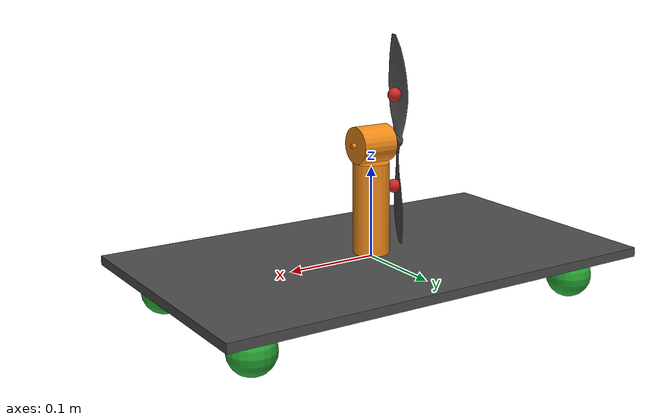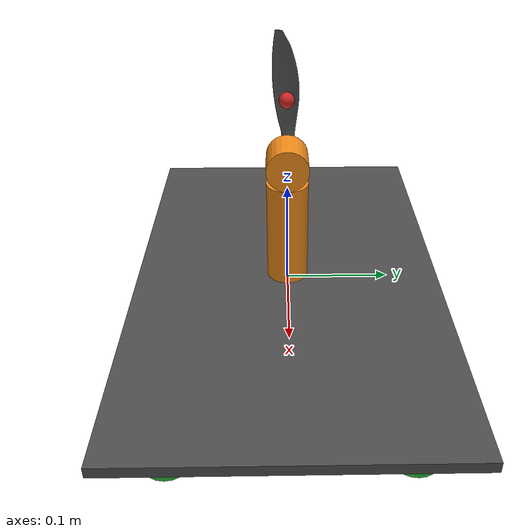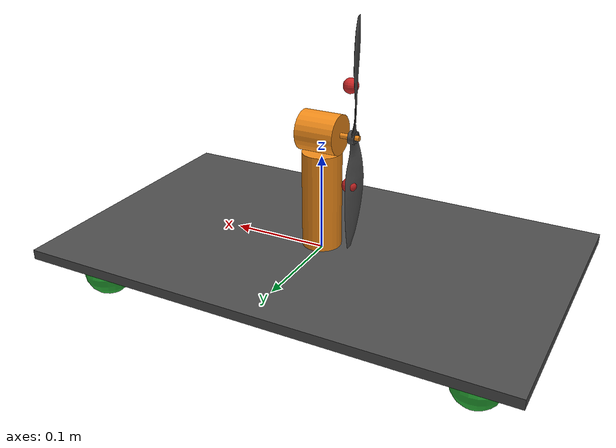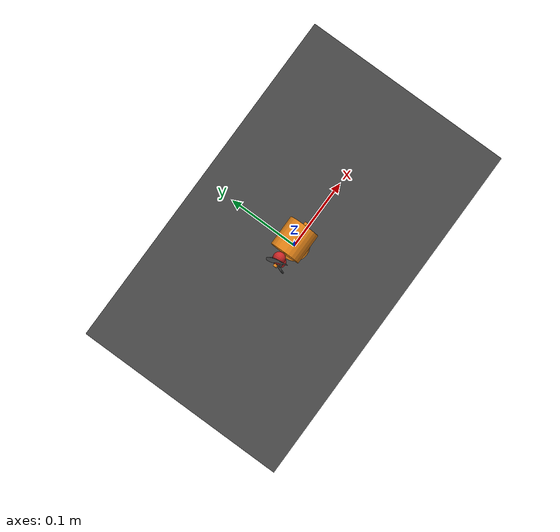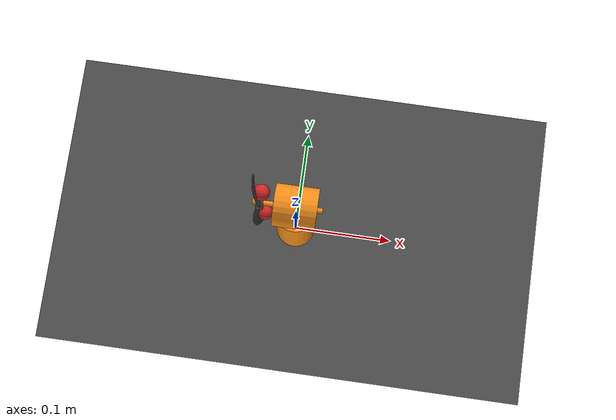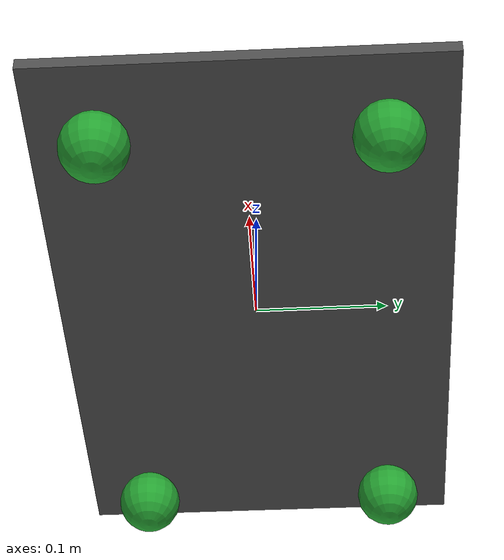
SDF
<sdf version='1.7'>
<model name='fan_car_ball_castor_ardupilot'>

    <include>
        <pose>0 0 0 0 0 0</pose>
        <uri>model://fan_car_ball_castor</uri>
    </include>

    <!--  Using values from iris_with_standoffs_demo -->
    <plugin name="prop_blade_1_liftdrag" filename="libLiftDragPlugin.so">
        <a0>0.3</a0>
        <alpha_stall>1.4</alpha_stall>
        <cla>4.2500</cla>
        <cda>0.10</cda>
        <cma>0.00</cma>
        <cla_stall>-0.025</cla_stall>
        <cda_stall>0.0</cda_stall>
        <cma_stall>0.0</cma_stall>
        <area>0.002</area>
        <air_density>1.2041</air_density>
        <cp>0.084 0 0</cp>
        <forward>0 1 0</forward>
        <upward>0 0 1</upward>
        <link_name>fan_car_ball_castor_ardupilot::fan_car_ball_castor::back_motor_link</link_name>
    </plugin>
    <plugin name="prop_blade_2_liftdrag" filename="libLiftDragPlugin.so">
        <a0>0.3</a0>
        <alpha_stall>1.4</alpha_stall>
        <cla>4.2500</cla>
        <cda>0.10</cda>
        <cma>0.00</cma>
        <cla_stall>-0.025</cla_stall>
        <cda_stall>0.0</cda_stall>
        <cma_stall>0.0</cma_stall>
        <area>0.002</area>
        <air_density>1.2041</air_density>
        <cp>-0.084 0 0</cp>
        <forward>0 -1 0</forward>
        <upward>0 0 1</upward>
        <link_name>fan_car_ball_castor_ardupilot::fan_car_ball_castor::back_motor_link</link_name>
    </plugin>

    <plugin name="ardupilot_plugin" filename="libArduPilotPlugin.so">
        <fdm_addr>127.0.0.1</fdm_addr>
        <fdm_port_in>9002</fdm_port_in>
        <connectionTimeoutMaxCount>5</connectionTimeoutMaxCount>
        <modelXYZToAirplaneXForwardZDown>0 0 0 3.141593 0 0</modelXYZToAirplaneXForwardZDown>
        <gazeboXYZToNED>0 0 0 3.141593 0 0</gazeboXYZToNED>
        <imuName>fan_car_ball_castor_ardupilot::imu_link::imu_sensor</imuName>

        <!-- Control / channels -->

        <!--
            SERVO1_FUNCTION 26 (Ground Steering)
            SERVO1_MIN      1000
            SERVO1_MAX      2000
            SERVO1_TRIM     1500
        -->
        <control channel="0">
            <jointName>fan_car_ball_castor_ardupilot::fan_car_ball_castor::back_steer_rotor_joint</jointName>
            <useForce>1</useForce>
            <multiplier>6.283185</multiplier>
            <offset>-0.5</offset>
            <servo_min>1000</servo_min>
            <servo_max>2000</servo_max>
            <type>POSITION</type>
            <p_gain>10</p_gain>
            <i_gain>0.1</i_gain>
            <d_gain>0.02</d_gain>
            <i_max>1</i_max>
            <i_min>0</i_min>
            <cmd_max>100.0</cmd_max>
            <cmd_min>-100.0</cmd_min>
        </control>

        <!--
            SERVO3_FUNCTION 70 (Throttle)
            SERVO3_MIN      1000
            SERVO3_MAX      2000
            SERVO3_TRIM     1000
        -->
        <control channel="2">
            <jointName>fan_car_ball_castor_ardupilot::fan_car_ball_castor::back_motor_joint</jointName>
            <useForce>1</useForce>
            <multiplier>-800</multiplier>
            <offset>0</offset>
            <servo_min>1000</servo_min>
            <servo_max>2000</servo_max>
            <type>VELOCITY</type>
            <p_gain>0.005</p_gain>
            <i_gain>0.0</i_gain>
            <d_gain>1.0e-5</d_gain>
            <i_max>0.1</i_max>
            <i_min>0.0</i_min>
            <cmd_max>5.0</cmd_max>
            <cmd_min>-5.0</cmd_min>
        </control>
    </plugin>

    <link name='imu_link'>
        <inertial>
            <mass>0.01</mass>
            <inertia>
                <ixx>1.66667E-07</ixx>
                <ixy>0</ixy>
                <ixz>0</ixz>
                <iyy>1.66667E-07</iyy>
                <iyz>0</iyz>
                <izz>1.66667E-07</izz>
            </inertia>
        </inertial>
        <sensor name="imu_sensor" type="imu">
            <pose>0 0 0 3.141593 0 0</pose>
            <always_on>1</always_on>
            <update_rate>1000.0</update_rate>
        </sensor>
    </link>

    <joint name='imu_joint' type='revolute'>
        <child>imu_link</child>
        <parent>fan_car_ball_castor_ardupilot::fan_car_ball_castor::base_link</parent>
        <axis>
            <xyz>0 0 1</xyz>
            <limit>
                <lower>0</lower>
                <upper>0</upper>
            </limit>
        </axis>
    </joint>

</model>
</sdf>

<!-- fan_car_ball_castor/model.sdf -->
<sdf version='1.7'>
  <model name='fan_car_ball_castor'>
    <link name='base_link'>
      <inertial>
        <pose>0 0 0 0 -0 0</pose>
        <mass>1</mass>
        <inertia>
          <ixx>0.00750833</ixx>
          <ixy>0</ixy>
          <ixz>0</ixz>
          <iyy>0.0208417</iyy>
          <iyz>0</iyz>
          <izz>0.0283333</izz>
        </inertia>
      </inertial>
      <collision name='base_link_collision'>
        <pose>0 0 0 0 -0 0</pose>
        <geometry>
          <box>
            <size>0.5 0.3 0.01</size>
          </box>
        </geometry>
        <surface>
          <friction>
            <ode>
              <mu2>1</mu2>
              <fdir1>1 0 0</fdir1>
              <mu1>1.0</mu1>
            </ode>
          </friction>
          <contact>
            <ode/>
          </contact>
        </surface>
      </collision>
      <visual name='base_link_visual'>
        <pose>0 0 0 0 -0 0</pose>
        <geometry>
          <box>
            <size>0.5 0.3 0.01</size>
          </box>
        </geometry>
        <material>
          <script>
            <name>Gazebo/DarkGray</name>
            <uri>file://media/materials/scripts/gazebo.material</uri>
          </script>
        </material>
      </visual>
      <gravity>1</gravity>
      <velocity_decay/>
    </link>
    <joint name='back_left_ball_castor_zaxis_joint' type='revolute'>
      <pose relative_to='base_link'>-0.2 0.1 -0.03 0 -0 0</pose>
      <parent>base_link</parent>
      <child>back_left_ball_castor_zaxis_link</child>
      <axis>
        <xyz>0 0 1</xyz>
        <limit>
          <lower>-1e+16</lower>
          <upper>1e+16</upper>
        </limit>
        <dynamics>
          <damping>0.0001</damping>
          <friction>0</friction>
          <spring_reference>0</spring_reference>
          <spring_stiffness>0</spring_stiffness>
        </dynamics>
      </axis>
      <physics>
        <ode>
          <limit>
            <cfm>0</cfm>
            <erp>0.2</erp>
          </limit>
        </ode>
      </physics>
    </joint>
    <link name='back_left_ball_castor_zaxis_link'>
      <pose relative_to='back_left_ball_castor_zaxis_joint'>0 0 0 0 -0 0</pose>
      <inertial>
        <pose>0 0 0 0 -0 0</pose>
        <mass>0.0333333</mass>
        <inertia>
          <ixx>8.33333e-06</ixx>
          <ixy>0</ixy>
          <ixz>0</ixz>
          <iyy>8.33333e-06</iyy>
          <iyz>0</iyz>
          <izz>8.33333e-06</izz>
        </inertia>
      </inertial>
      <collision name='back_left_ball_castor_zaxis_link_collision'>
        <pose>0 0 0 0 -0 0</pose>
        <geometry>
          <sphere>
            <radius>0.005</radius>
          </sphere>
        </geometry>
        <surface>
          <friction>
            <ode>
              <mu2>1</mu2>
              <fdir1>1 0 0</fdir1>
              <mu1>1.0</mu1>
            </ode>
          </friction>
          <contact>
            <ode/>
          </contact>
        </surface>
      </collision>
      <visual name='back_left_ball_castor_zaxis_link_visual'>
        <pose>0 0 0 0 -0 0</pose>
        <geometry>
          <sphere>
            <radius>0.005</radius>
          </sphere>
        </geometry>
        <material>
          <script>
            <name>Gazebo/Green</name>
            <uri>file://media/materials/scripts/gazebo.material</uri>
          </script>
        </material>
      </visual>
      <gravity>1</gravity>
      <velocity_decay/>
    </link>
    <joint name='back_left_ball_castor_yaxis_joint' type='revolute'>
      <pose relative_to='back_left_ball_castor_zaxis_link'>0 0 0 0 -0 0</pose>
      <parent>back_left_ball_castor_zaxis_link</parent>
      <child>back_left_ball_castor_yaxis_link</child>
      <axis>
        <xyz>0 1 0</xyz>
        <limit>
          <lower>-1e+16</lower>
          <upper>1e+16</upper>
        </limit>
        <dynamics>
          <damping>0.0001</damping>
          <friction>0</friction>
          <spring_reference>0</spring_reference>
          <spring_stiffness>0</spring_stiffness>
        </dynamics>
      </axis>
      <physics>
        <ode>
          <limit>
            <cfm>0</cfm>
            <erp>0.2</erp>
          </limit>
        </ode>
      </physics>
    </joint>
    <link name='back_left_ball_castor_yaxis_link'>
      <pose relative_to='back_left_ball_castor_yaxis_joint'>0 0 0 0 -0 0</pose>
      <inertial>
        <pose>0 0 0 0 -0 0</pose>
        <mass>0.0333333</mass>
        <inertia>
          <ixx>8.33333e-06</ixx>
          <ixy>0</ixy>
          <ixz>0</ixz>
          <iyy>8.33333e-06</iyy>
          <iyz>0</iyz>
          <izz>8.33333e-06</izz>
        </inertia>
      </inertial>
      <collision name='back_left_ball_castor_yaxis_link_collision'>
        <pose>0 0 0 0 -0 0</pose>
        <geometry>
          <sphere>
            <radius>0.005</radius>
          </sphere>
        </geometry>
        <surface>
          <friction>
            <ode>
              <mu2>1</mu2>
              <fdir1>1 0 0</fdir1>
              <mu1>1.0</mu1>
            </ode>
          </friction>
          <contact>
            <ode/>
          </contact>
        </surface>
      </collision>
      <visual name='back_left_ball_castor_yaxis_link_visual'>
        <pose>0 0 0 0 -0 0</pose>
        <geometry>
          <sphere>
            <radius>0.005</radius>
          </sphere>
        </geometry>
        <material>
          <script>
            <name>Gazebo/Green</name>
            <uri>file://media/materials/scripts/gazebo.material</uri>
          </script>
        </material>
      </visual>
      <gravity>1</gravity>
      <velocity_decay/>
    </link>
    <joint name='back_left_ball_castor_xaxis_joint' type='revolute'>
      <pose relative_to='back_left_ball_castor_yaxis_link'>0 0 0 0 -0 0</pose>
      <parent>back_left_ball_castor_yaxis_link</parent>
      <child>back_left_ball_castor_xaxis_link</child>
      <axis>
        <xyz>1 0 0</xyz>
        <limit>
          <lower>-1e+16</lower>
          <upper>1e+16</upper>
        </limit>
        <dynamics>
          <damping>0.0001</damping>
          <friction>0</friction>
          <spring_reference>0</spring_reference>
          <spring_stiffness>0</spring_stiffness>
        </dynamics>
      </axis>
      <physics>
        <ode>
          <limit>
            <cfm>0</cfm>
            <erp>0.2</erp>
          </limit>
        </ode>
      </physics>
    </joint>
    <link name='back_left_ball_castor_xaxis_link'>
      <pose relative_to='back_left_ball_castor_xaxis_joint'>0 0 0 0 -0 0</pose>
      <inertial>
        <pose>0 0 0 0 -0 0</pose>
        <mass>0.0333333</mass>
        <inertia>
          <ixx>8.33333e-06</ixx>
          <ixy>0</ixy>
          <ixz>0</ixz>
          <iyy>8.33333e-06</iyy>
          <iyz>0</iyz>
          <izz>8.33333e-06</izz>
        </inertia>
      </inertial>
      <collision name='back_left_ball_castor_xaxis_link_collision'>
        <pose>0 0 0 0 -0 0</pose>
        <geometry>
          <sphere>
            <radius>0.025</radius>
          </sphere>
        </geometry>
        <surface>
          <friction>
            <ode>
              <mu2>1</mu2>
              <fdir1>1 0 0</fdir1>
              <mu1>1.0</mu1>
            </ode>
          </friction>
          <contact>
            <ode/>
          </contact>
        </surface>
      </collision>
      <visual name='back_left_ball_castor_xaxis_link_visual'>
        <pose>0 0 0 0 -0 0</pose>
        <geometry>
          <sphere>
            <radius>0.025</radius>
          </sphere>
        </geometry>
        <material>
          <script>
            <name>Gazebo/Green</name>
            <uri>file://media/materials/scripts/gazebo.material</uri>
          </script>
        </material>
      </visual>
      <gravity>1</gravity>
      <velocity_decay/>
    </link>
    <joint name='back_right_ball_castor_zaxis_joint' type='revolute'>
      <pose relative_to='base_link'>-0.2 -0.1 -0.03 0 -0 0</pose>
      <parent>base_link</parent>
      <child>back_right_ball_castor_zaxis_link</child>
      <axis>
        <xyz>0 0 1</xyz>
        <limit>
          <lower>-1e+16</lower>
          <upper>1e+16</upper>
        </limit>
        <dynamics>
          <damping>0.0001</damping>
          <friction>0</friction>
          <spring_reference>0</spring_reference>
          <spring_stiffness>0</spring_stiffness>
        </dynamics>
      </axis>
      <physics>
        <ode>
          <limit>
            <cfm>0</cfm>
            <erp>0.2</erp>
          </limit>
        </ode>
      </physics>
    </joint>
    <link name='back_right_ball_castor_zaxis_link'>
      <pose relative_to='back_right_ball_castor_zaxis_joint'>0 0 0 0 -0 0</pose>
      <inertial>
        <pose>0 0 0 0 -0 0</pose>
        <mass>0.0333333</mass>
        <inertia>
          <ixx>8.33333e-06</ixx>
          <ixy>0</ixy>
          <ixz>0</ixz>
          <iyy>8.33333e-06</iyy>
          <iyz>0</iyz>
          <izz>8.33333e-06</izz>
        </inertia>
      </inertial>
      <collision name='back_right_ball_castor_zaxis_link_collision'>
        <pose>0 0 0 0 -0 0</pose>
        <geometry>
          <sphere>
            <radius>0.005</radius>
          </sphere>
        </geometry>
        <surface>
          <friction>
            <ode>
              <mu2>1</mu2>
              <fdir1>1 0 0</fdir1>
              <mu1>1.0</mu1>
            </ode>
          </friction>
          <contact>
            <ode/>
          </contact>
        </surface>
      </collision>
      <visual name='back_right_ball_castor_zaxis_link_visual'>
        <pose>0 0 0 0 -0 0</pose>
        <geometry>
          <sphere>
            <radius>0.005</radius>
          </sphere>
        </geometry>
        <material>
          <script>
            <name>Gazebo/Green</name>
            <uri>file://media/materials/scripts/gazebo.material</uri>
          </script>
        </material>
      </visual>
      <gravity>1</gravity>
      <velocity_decay/>
    </link>
    <joint name='back_right_ball_castor_yaxis_joint' type='revolute'>
      <pose relative_to='back_right_ball_castor_zaxis_link'>0 0 0 0 -0 0</pose>
      <parent>back_right_ball_castor_zaxis_link</parent>
      <child>back_right_ball_castor_yaxis_link</child>
      <axis>
        <xyz>0 1 0</xyz>
        <limit>
          <lower>-1e+16</lower>
          <upper>1e+16</upper>
        </limit>
        <dynamics>
          <damping>0.0001</damping>
          <friction>0</friction>
          <spring_reference>0</spring_reference>
          <spring_stiffness>0</spring_stiffness>
        </dynamics>
      </axis>
      <physics>
        <ode>
          <limit>
            <cfm>0</cfm>
            <erp>0.2</erp>
          </limit>
        </ode>
      </physics>
    </joint>
    <link name='back_right_ball_castor_yaxis_link'>
      <pose relative_to='back_right_ball_castor_yaxis_joint'>0 0 0 0 -0 0</pose>
      <inertial>
        <pose>0 0 0 0 -0 0</pose>
        <mass>0.0333333</mass>
        <inertia>
          <ixx>8.33333e-06</ixx>
          <ixy>0</ixy>
          <ixz>0</ixz>
          <iyy>8.33333e-06</iyy>
          <iyz>0</iyz>
          <izz>8.33333e-06</izz>
        </inertia>
      </inertial>
      <collision name='back_right_ball_castor_yaxis_link_collision'>
        <pose>0 0 0 0 -0 0</pose>
        <geometry>
          <sphere>
            <radius>0.005</radius>
          </sphere>
        </geometry>
        <surface>
          <friction>
            <ode>
              <mu2>1</mu2>
              <fdir1>1 0 0</fdir1>
              <mu1>1.0</mu1>
            </ode>
          </friction>
          <contact>
            <ode/>
          </contact>
        </surface>
      </collision>
      <visual name='back_right_ball_castor_yaxis_link_visual'>
        <pose>0 0 0 0 -0 0</pose>
        <geometry>
          <sphere>
            <radius>0.005</radius>
          </sphere>
        </geometry>
        <material>
          <script>
            <name>Gazebo/Green</name>
            <uri>file://media/materials/scripts/gazebo.material</uri>
          </script>
        </material>
      </visual>
      <gravity>1</gravity>
      <velocity_decay/>
    </link>
    <joint name='back_right_ball_castor_xaxis_joint' type='revolute'>
      <pose relative_to='back_right_ball_castor_yaxis_link'>0 0 0 0 -0 0</pose>
      <parent>back_right_ball_castor_yaxis_link</parent>
      <child>back_right_ball_castor_xaxis_link</child>
      <axis>
        <xyz>1 0 0</xyz>
        <limit>
          <lower>-1e+16</lower>
          <upper>1e+16</upper>
        </limit>
        <dynamics>
          <damping>0.0001</damping>
          <friction>0</friction>
          <spring_reference>0</spring_reference>
          <spring_stiffness>0</spring_stiffness>
        </dynamics>
      </axis>
      <physics>
        <ode>
          <limit>
            <cfm>0</cfm>
            <erp>0.2</erp>
          </limit>
        </ode>
      </physics>
    </joint>
    <link name='back_right_ball_castor_xaxis_link'>
      <pose relative_to='back_right_ball_castor_xaxis_joint'>0 0 0 0 -0 0</pose>
      <inertial>
        <pose>0 0 0 0 -0 0</pose>
        <mass>0.0333333</mass>
        <inertia>
          <ixx>8.33333e-06</ixx>
          <ixy>0</ixy>
          <ixz>0</ixz>
          <iyy>8.33333e-06</iyy>
          <iyz>0</iyz>
          <izz>8.33333e-06</izz>
        </inertia>
      </inertial>
      <collision name='back_right_ball_castor_xaxis_link_collision'>
        <pose>0 0 0 0 -0 0</pose>
        <geometry>
          <sphere>
            <radius>0.025</radius>
          </sphere>
        </geometry>
        <surface>
          <friction>
            <ode>
              <mu2>1</mu2>
              <fdir1>1 0 0</fdir1>
              <mu1>1.0</mu1>
            </ode>
          </friction>
          <contact>
            <ode/>
          </contact>
        </surface>
      </collision>
      <visual name='back_right_ball_castor_xaxis_link_visual'>
        <pose>0 0 0 0 -0 0</pose>
        <geometry>
          <sphere>
            <radius>0.025</radius>
          </sphere>
        </geometry>
        <material>
          <script>
            <name>Gazebo/Green</name>
            <uri>file://media/materials/scripts/gazebo.material</uri>
          </script>
        </material>
      </visual>
      <gravity>1</gravity>
      <velocity_decay/>
    </link>
    <joint name='back_steer_rotor_joint' type='revolute'>
      <pose relative_to='base_link'>0 0 0.055 0 -0 0</pose>
      <parent>base_link</parent>
      <child>back_steer_rotor_link</child>
      <axis>
        <xyz>0 0 1</xyz>
        <limit>
          <lower>-3.14159</lower>
          <upper>3.14159</upper>
          <effort>50</effort>
          <velocity>5</velocity>
        </limit>
        <dynamics>
          <damping>0.01</damping>
          <friction>0.001</friction>
          <spring_reference>0</spring_reference>
          <spring_stiffness>0</spring_stiffness>
        </dynamics>
      </axis>
      <physics>
        <ode>
          <limit>
            <cfm>0</cfm>
            <erp>0.2</erp>
          </limit>
        </ode>
      </physics>
    </joint>
    <link name='back_steer_rotor_link'>
      <pose relative_to='back_steer_rotor_joint'>0 0 0 0 -0 0</pose>
      <inertial>
        <pose>0 0 0 0 -0 0</pose>
        <mass>0.1</mass>
        <inertia>
          <ixx>9.33333e-05</ixx>
          <ixy>0</ixy>
          <ixz>0</ixz>
          <iyy>9.33333e-05</iyy>
          <iyz>0</iyz>
          <izz>2e-05</izz>
        </inertia>
      </inertial>
      <collision name='back_steer_rotor_link_collision'>
        <pose>0 0 0 0 -0 0</pose>
        <geometry>
          <cylinder>
            <length>0.1</length>
            <radius>0.02</radius>
          </cylinder>
        </geometry>
        <surface>
          <friction>
            <ode>
              <mu2>1</mu2>
              <fdir1>1 0 0</fdir1>
              <mu1>1.0</mu1>
            </ode>
          </friction>
          <contact>
            <ode/>
          </contact>
        </surface>
      </collision>
      <visual name='back_steer_rotor_link_visual'>
        <pose>0 0 0 0 -0 0</pose>
        <geometry>
          <cylinder>
            <length>0.1</length>
            <radius>0.02</radius>
          </cylinder>
        </geometry>
        <material>
          <script>
            <name>Gazebo/Orange</name>
            <uri>file://media/materials/scripts/gazebo.material</uri>
          </script>
        </material>
      </visual>
      <gravity>1</gravity>
      <velocity_decay/>
    </link>
    <joint name='back_motor_joint' type='revolute'>
      <pose relative_to='back_steer_rotor_link'>0 0 0.07 0 -1.5708 0</pose>
      <parent>back_steer_rotor_link</parent>
      <child>back_motor_link</child>
      <axis>
        <xyz>0 0 1</xyz>
        <limit>
          <lower>-1e+16</lower>
          <upper>1e+16</upper>
        </limit>
        <dynamics>
          <damping>0.01</damping>
          <friction>0.001</friction>
          <spring_reference>0</spring_reference>
          <spring_stiffness>0</spring_stiffness>
        </dynamics>
      </axis>
      <physics>
        <ode>
          <limit>
            <cfm>0</cfm>
            <erp>0.2</erp>
          </limit>
        </ode>
      </physics>
    </joint>
    <link name='back_motor_link'>
      <pose relative_to='back_motor_joint'>0 0 0 0 -0 0</pose>
      <inertial>
        <pose>0 0 0.004286 0 -0 0</pose>
        <mass>0.07</mass>
        <inertia>
          <ixx>2.18393e-05</ixx>
          <ixy>0</ixy>
          <ixz>-2.03725e-21</ixz>
          <iyy>5.51101e-05</iyy>
          <iyz>0</iyz>
          <izz>4.53958e-05</izz>
        </inertia>
      </inertial>
      <collision name='back_motor_link_collision'>
        <pose>0 0 0 0 -0 0</pose>
        <geometry>
          <cylinder>
            <length>0.04</length>
            <radius>0.02</radius>
          </cylinder>
        </geometry>
        <surface>
          <friction>
            <ode>
              <mu2>1</mu2>
              <fdir1>1 0 0</fdir1>
              <mu1>1.0</mu1>
            </ode>
          </friction>
          <contact>
            <ode/>
          </contact>
        </surface>
      </collision>
      <collision name='back_motor_link_fixed_joint_lump__back_prop_link_collision_1'>
        <pose>0 0 0.03 0 1.5708 0</pose>
        <geometry>
          <cylinder>
            <length>0.2</length>
            <radius>0.005</radius>
          </cylinder>
        </geometry>
        <surface>
          <friction>
            <ode>
              <mu2>1</mu2>
              <fdir1>1 0 0</fdir1>
              <mu1>1.0</mu1>
            </ode>
          </friction>
          <contact>
            <ode/>
          </contact>
        </surface>
      </collision>
      <visual name='back_motor_link_visual'>
        <pose>0 0 0 0 -0 0</pose>
        <geometry>
          <cylinder>
            <length>0.04</length>
            <radius>0.02</radius>
          </cylinder>
        </geometry>
        <material>
          <script>
            <name>Gazebo/Orange</name>
            <uri>file://media/materials/scripts/gazebo.material</uri>
          </script>
        </material>
      </visual>
      <visual name='back_motor_link_fixed_joint_lump__back_motor_axle_link_visual_1'>
        <pose>0 0 0.0075 0 -0 0</pose>
        <geometry>
          <cylinder>
            <length>0.065</length>
            <radius>0.0025</radius>
          </cylinder>
        </geometry>
        <material>
          <script>
            <name>Gazebo/Orange</name>
            <uri>file://media/materials/scripts/gazebo.material</uri>
          </script>
        </material>
      </visual>
      <visual name='back_motor_link_fixed_joint_lump__back_prop_link_visual_2'>
        <pose>0 0 0.03 0 -0 0.174533</pose>
        <geometry>
          <mesh>
            <scale>1 1 1</scale>
            <uri>model://fan_car_ball_castor/meshes/propeller_9x4.7.stl</uri>
          </mesh>
        </geometry>
        <material>
          <script>
            <name>Gazebo/DarkGray</name>
            <uri>file://media/materials/scripts/gazebo.material</uri>
          </script>
        </material>
      </visual>
      <visual name='back_motor_link_fixed_joint_lump__back_prop_cp1_link_visual_3'>
        <pose>0.05 0 0.03 0 -0 0</pose>
        <geometry>
          <sphere>
            <radius>0.0075</radius>
          </sphere>
        </geometry>
        <material>
          <script>
            <name>Gazebo/Red</name>
            <uri>file://media/materials/scripts/gazebo.material</uri>
          </script>
        </material>
      </visual>
      <visual name='back_motor_link_fixed_joint_lump__back_prop_cp2_link_visual_4'>
        <pose>-0.05 0 0.03 0 -0 0</pose>
        <geometry>
          <sphere>
            <radius>0.0075</radius>
          </sphere>
        </geometry>
        <material>
          <script>
            <name>Gazebo/Red</name>
            <uri>file://media/materials/scripts/gazebo.material</uri>
          </script>
        </material>
      </visual>
      <velocity_decay/>
      <velocity_decay/>
      <velocity_decay/>
      <velocity_decay/>
      <gravity>1</gravity>
      <velocity_decay/>
    </link>
    <joint name='front_left_ball_castor_zaxis_joint' type='revolute'>
      <pose relative_to='base_link'>0.2 0.1 -0.03 0 -0 0</pose>
      <parent>base_link</parent>
      <child>front_left_ball_castor_zaxis_link</child>
      <axis>
        <xyz>0 0 1</xyz>
        <limit>
          <lower>-1e+16</lower>
          <upper>1e+16</upper>
        </limit>
        <dynamics>
          <damping>0.0001</damping>
          <friction>0</friction>
          <spring_reference>0</spring_reference>
          <spring_stiffness>0</spring_stiffness>
        </dynamics>
      </axis>
      <physics>
        <ode>
          <limit>
            <cfm>0</cfm>
            <erp>0.2</erp>
          </limit>
        </ode>
      </physics>
    </joint>
    <link name='front_left_ball_castor_zaxis_link'>
      <pose relative_to='front_left_ball_castor_zaxis_joint'>0 0 0 0 -0 0</pose>
      <inertial>
        <pose>0 0 0 0 -0 0</pose>
        <mass>0.0333333</mass>
        <inertia>
          <ixx>8.33333e-06</ixx>
          <ixy>0</ixy>
          <ixz>0</ixz>
          <iyy>8.33333e-06</iyy>
          <iyz>0</iyz>
          <izz>8.33333e-06</izz>
        </inertia>
      </inertial>
      <collision name='front_left_ball_castor_zaxis_link_collision'>
        <pose>0 0 0 0 -0 0</pose>
        <geometry>
          <sphere>
            <radius>0.005</radius>
          </sphere>
        </geometry>
        <surface>
          <friction>
            <ode>
              <mu2>1</mu2>
              <fdir1>1 0 0</fdir1>
              <mu1>1.0</mu1>
            </ode>
          </friction>
          <contact>
            <ode/>
          </contact>
        </surface>
      </collision>
      <visual name='front_left_ball_castor_zaxis_link_visual'>
        <pose>0 0 0 0 -0 0</pose>
        <geometry>
          <sphere>
            <radius>0.005</radius>
          </sphere>
        </geometry>
        <material>
          <script>
            <name>Gazebo/Green</name>
            <uri>file://media/materials/scripts/gazebo.material</uri>
          </script>
        </material>
      </visual>
      <gravity>1</gravity>
      <velocity_decay/>
    </link>
    <joint name='front_left_ball_castor_yaxis_joint' type='revolute'>
      <pose relative_to='front_left_ball_castor_zaxis_link'>0 0 0 0 -0 0</pose>
      <parent>front_left_ball_castor_zaxis_link</parent>
      <child>front_left_ball_castor_yaxis_link</child>
      <axis>
        <xyz>0 1 0</xyz>
        <limit>
          <lower>-1e+16</lower>
          <upper>1e+16</upper>
        </limit>
        <dynamics>
          <damping>0.0001</damping>
          <friction>0</friction>
          <spring_reference>0</spring_reference>
          <spring_stiffness>0</spring_stiffness>
        </dynamics>
      </axis>
      <physics>
        <ode>
          <limit>
            <cfm>0</cfm>
            <erp>0.2</erp>
          </limit>
        </ode>
      </physics>
    </joint>
    <link name='front_left_ball_castor_yaxis_link'>
      <pose relative_to='front_left_ball_castor_yaxis_joint'>0 0 0 0 -0 0</pose>
      <inertial>
        <pose>0 0 0 0 -0 0</pose>
        <mass>0.0333333</mass>
        <inertia>
          <ixx>8.33333e-06</ixx>
          <ixy>0</ixy>
          <ixz>0</ixz>
          <iyy>8.33333e-06</iyy>
          <iyz>0</iyz>
          <izz>8.33333e-06</izz>
        </inertia>
      </inertial>
      <collision name='front_left_ball_castor_yaxis_link_collision'>
        <pose>0 0 0 0 -0 0</pose>
        <geometry>
          <sphere>
            <radius>0.005</radius>
          </sphere>
        </geometry>
        <surface>
          <friction>
            <ode>
              <mu2>1</mu2>
              <fdir1>1 0 0</fdir1>
              <mu1>1.0</mu1>
            </ode>
          </friction>
          <contact>
            <ode/>
          </contact>
        </surface>
      </collision>
      <visual name='front_left_ball_castor_yaxis_link_visual'>
        <pose>0 0 0 0 -0 0</pose>
        <geometry>
          <sphere>
            <radius>0.005</radius>
          </sphere>
        </geometry>
        <material>
          <script>
            <name>Gazebo/Green</name>
            <uri>file://media/materials/scripts/gazebo.material</uri>
          </script>
        </material>
      </visual>
      <gravity>1</gravity>
      <velocity_decay/>
    </link>
    <joint name='front_left_ball_castor_xaxis_joint' type='revolute'>
      <pose relative_to='front_left_ball_castor_yaxis_link'>0 0 0 0 -0 0</pose>
      <parent>front_left_ball_castor_yaxis_link</parent>
      <child>front_left_ball_castor_xaxis_link</child>
      <axis>
        <xyz>1 0 0</xyz>
        <limit>
          <lower>-1e+16</lower>
          <upper>1e+16</upper>
        </limit>
        <dynamics>
          <damping>0.0001</damping>
          <friction>0</friction>
          <spring_reference>0</spring_reference>
          <spring_stiffness>0</spring_stiffness>
        </dynamics>
      </axis>
      <physics>
        <ode>
          <limit>
            <cfm>0</cfm>
            <erp>0.2</erp>
          </limit>
        </ode>
      </physics>
    </joint>
    <link name='front_left_ball_castor_xaxis_link'>
      <pose relative_to='front_left_ball_castor_xaxis_joint'>0 0 0 0 -0 0</pose>
      <inertial>
        <pose>0 0 0 0 -0 0</pose>
        <mass>0.0333333</mass>
        <inertia>
          <ixx>8.33333e-06</ixx>
          <ixy>0</ixy>
          <ixz>0</ixz>
          <iyy>8.33333e-06</iyy>
          <iyz>0</iyz>
          <izz>8.33333e-06</izz>
        </inertia>
      </inertial>
      <collision name='front_left_ball_castor_xaxis_link_collision'>
        <pose>0 0 0 0 -0 0</pose>
        <geometry>
          <sphere>
            <radius>0.025</radius>
          </sphere>
        </geometry>
        <surface>
          <friction>
            <ode>
              <mu2>1</mu2>
              <fdir1>1 0 0</fdir1>
              <mu1>1.0</mu1>
            </ode>
          </friction>
          <contact>
            <ode/>
          </contact>
        </surface>
      </collision>
      <visual name='front_left_ball_castor_xaxis_link_visual'>
        <pose>0 0 0 0 -0 0</pose>
        <geometry>
          <sphere>
            <radius>0.025</radius>
          </sphere>
        </geometry>
        <material>
          <script>
            <name>Gazebo/Green</name>
            <uri>file://media/materials/scripts/gazebo.material</uri>
          </script>
        </material>
      </visual>
      <gravity>1</gravity>
      <velocity_decay/>
    </link>
    <joint name='front_right_ball_castor_zaxis_joint' type='revolute'>
      <pose relative_to='base_link'>0.2 -0.1 -0.03 0 -0 0</pose>
      <parent>base_link</parent>
      <child>front_right_ball_castor_zaxis_link</child>
      <axis>
        <xyz>0 0 1</xyz>
        <limit>
          <lower>-1e+16</lower>
          <upper>1e+16</upper>
        </limit>
        <dynamics>
          <damping>0.0001</damping>
          <friction>0</friction>
          <spring_reference>0</spring_reference>
          <spring_stiffness>0</spring_stiffness>
        </dynamics>
      </axis>
      <physics>
        <ode>
          <limit>
            <cfm>0</cfm>
            <erp>0.2</erp>
          </limit>
        </ode>
      </physics>
    </joint>
    <link name='front_right_ball_castor_zaxis_link'>
      <pose relative_to='front_right_ball_castor_zaxis_joint'>0 0 0 0 -0 0</pose>
      <inertial>
        <pose>0 0 0 0 -0 0</pose>
        <mass>0.0333333</mass>
        <inertia>
          <ixx>8.33333e-06</ixx>
          <ixy>0</ixy>
          <ixz>0</ixz>
          <iyy>8.33333e-06</iyy>
          <iyz>0</iyz>
          <izz>8.33333e-06</izz>
        </inertia>
      </inertial>
      <collision name='front_right_ball_castor_zaxis_link_collision'>
        <pose>0 0 0 0 -0 0</pose>
        <geometry>
          <sphere>
            <radius>0.005</radius>
          </sphere>
        </geometry>
        <surface>
          <friction>
            <ode>
              <mu2>1</mu2>
              <fdir1>1 0 0</fdir1>
              <mu1>1.0</mu1>
            </ode>
          </friction>
          <contact>
            <ode/>
          </contact>
        </surface>
      </collision>
      <visual name='front_right_ball_castor_zaxis_link_visual'>
        <pose>0 0 0 0 -0 0</pose>
        <geometry>
          <sphere>
            <radius>0.005</radius>
          </sphere>
        </geometry>
        <material>
          <script>
            <name>Gazebo/Green</name>
            <uri>file://media/materials/scripts/gazebo.material</uri>
          </script>
        </material>
      </visual>
      <gravity>1</gravity>
      <velocity_decay/>
    </link>
    <joint name='front_right_ball_castor_yaxis_joint' type='revolute'>
      <pose relative_to='front_right_ball_castor_zaxis_link'>0 0 0 0 -0 0</pose>
      <parent>front_right_ball_castor_zaxis_link</parent>
      <child>front_right_ball_castor_yaxis_link</child>
      <axis>
        <xyz>0 1 0</xyz>
        <limit>
          <lower>-1e+16</lower>
          <upper>1e+16</upper>
        </limit>
        <dynamics>
          <damping>0.0001</damping>
          <friction>0</friction>
          <spring_reference>0</spring_reference>
          <spring_stiffness>0</spring_stiffness>
        </dynamics>
      </axis>
      <physics>
        <ode>
          <limit>
            <cfm>0</cfm>
            <erp>0.2</erp>
          </limit>
        </ode>
      </physics>
    </joint>
    <link name='front_right_ball_castor_yaxis_link'>
      <pose relative_to='front_right_ball_castor_yaxis_joint'>0 0 0 0 -0 0</pose>
      <inertial>
        <pose>0 0 0 0 -0 0</pose>
        <mass>0.0333333</mass>
        <inertia>
          <ixx>8.33333e-06</ixx>
          <ixy>0</ixy>
          <ixz>0</ixz>
          <iyy>8.33333e-06</iyy>
          <iyz>0</iyz>
          <izz>8.33333e-06</izz>
        </inertia>
      </inertial>
      <collision name='front_right_ball_castor_yaxis_link_collision'>
        <pose>0 0 0 0 -0 0</pose>
        <geometry>
          <sphere>
            <radius>0.005</radius>
          </sphere>
        </geometry>
        <surface>
          <friction>
            <ode>
              <mu2>1</mu2>
              <fdir1>1 0 0</fdir1>
              <mu1>1.0</mu1>
            </ode>
          </friction>
          <contact>
            <ode/>
          </contact>
        </surface>
      </collision>
      <visual name='front_right_ball_castor_yaxis_link_visual'>
        <pose>0 0 0 0 -0 0</pose>
        <geometry>
          <sphere>
            <radius>0.005</radius>
          </sphere>
        </geometry>
        <material>
          <script>
            <name>Gazebo/Green</name>
            <uri>file://media/materials/scripts/gazebo.material</uri>
          </script>
        </material>
      </visual>
      <gravity>1</gravity>
      <velocity_decay/>
    </link>
    <joint name='front_right_ball_castor_xaxis_joint' type='revolute'>
      <pose relative_to='front_right_ball_castor_yaxis_link'>0 0 0 0 -0 0</pose>
      <parent>front_right_ball_castor_yaxis_link</parent>
      <child>front_right_ball_castor_xaxis_link</child>
      <axis>
        <xyz>1 0 0</xyz>
        <limit>
          <lower>-1e+16</lower>
          <upper>1e+16</upper>
        </limit>
        <dynamics>
          <damping>0.0001</damping>
          <friction>0</friction>
          <spring_reference>0</spring_reference>
          <spring_stiffness>0</spring_stiffness>
        </dynamics>
      </axis>
      <physics>
        <ode>
          <limit>
            <cfm>0</cfm>
            <erp>0.2</erp>
          </limit>
        </ode>
      </physics>
    </joint>
    <link name='front_right_ball_castor_xaxis_link'>
      <pose relative_to='front_right_ball_castor_xaxis_joint'>0 0 0 0 -0 0</pose>
      <inertial>
        <pose>0 0 0 0 -0 0</pose>
        <mass>0.0333333</mass>
        <inertia>
          <ixx>8.33333e-06</ixx>
          <ixy>0</ixy>
          <ixz>0</ixz>
          <iyy>8.33333e-06</iyy>
          <iyz>0</iyz>
          <izz>8.33333e-06</izz>
        </inertia>
      </inertial>
      <collision name='front_right_ball_castor_xaxis_link_collision'>
        <pose>0 0 0 0 -0 0</pose>
        <geometry>
          <sphere>
            <radius>0.025</radius>
          </sphere>
        </geometry>
        <surface>
          <friction>
            <ode>
              <mu2>1</mu2>
              <fdir1>1 0 0</fdir1>
              <mu1>1.0</mu1>
            </ode>
          </friction>
          <contact>
            <ode/>
          </contact>
        </surface>
      </collision>
      <visual name='front_right_ball_castor_xaxis_link_visual'>
        <pose>0 0 0 0 -0 0</pose>
        <geometry>
          <sphere>
            <radius>0.025</radius>
          </sphere>
        </geometry>
        <material>
          <script>
            <name>Gazebo/Green</name>
            <uri>file://media/materials/scripts/gazebo.material</uri>
          </script>
        </material>
      </visual>
      <gravity>1</gravity>
      <velocity_decay/>
    </link>
  </model>
</sdf>
